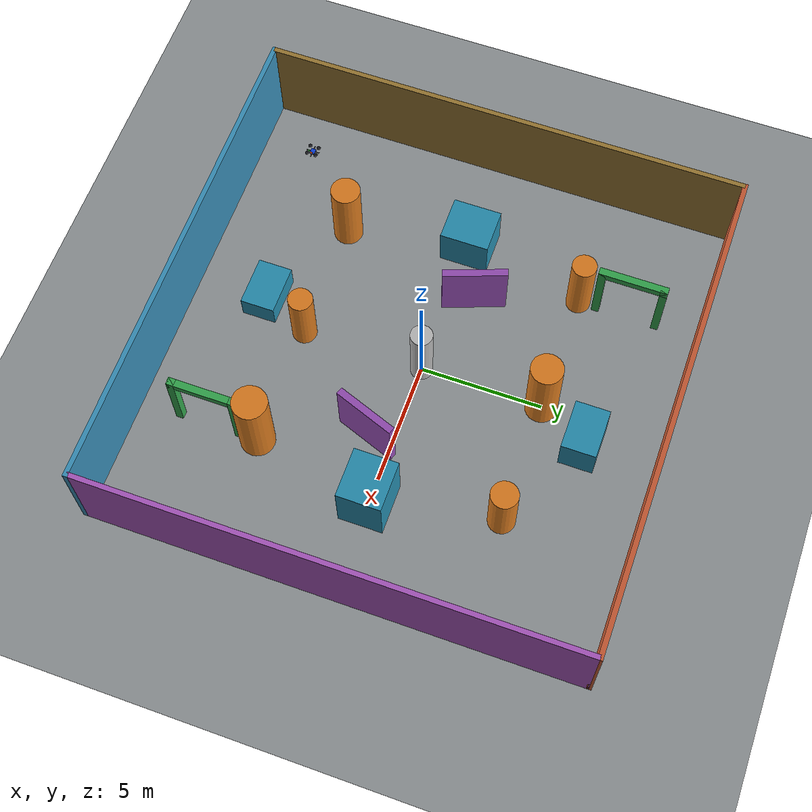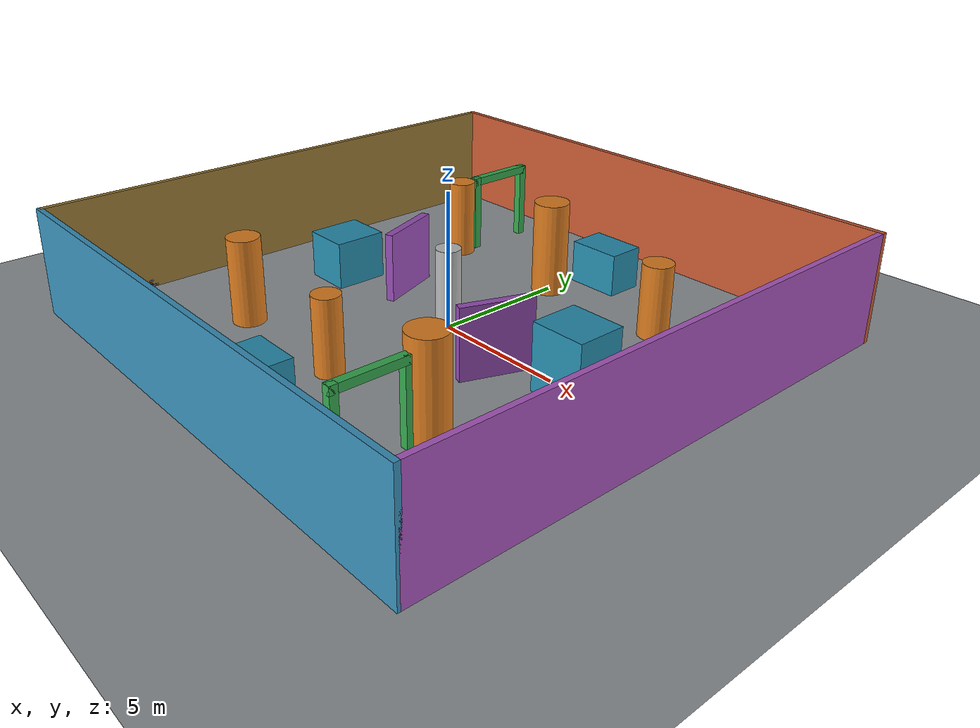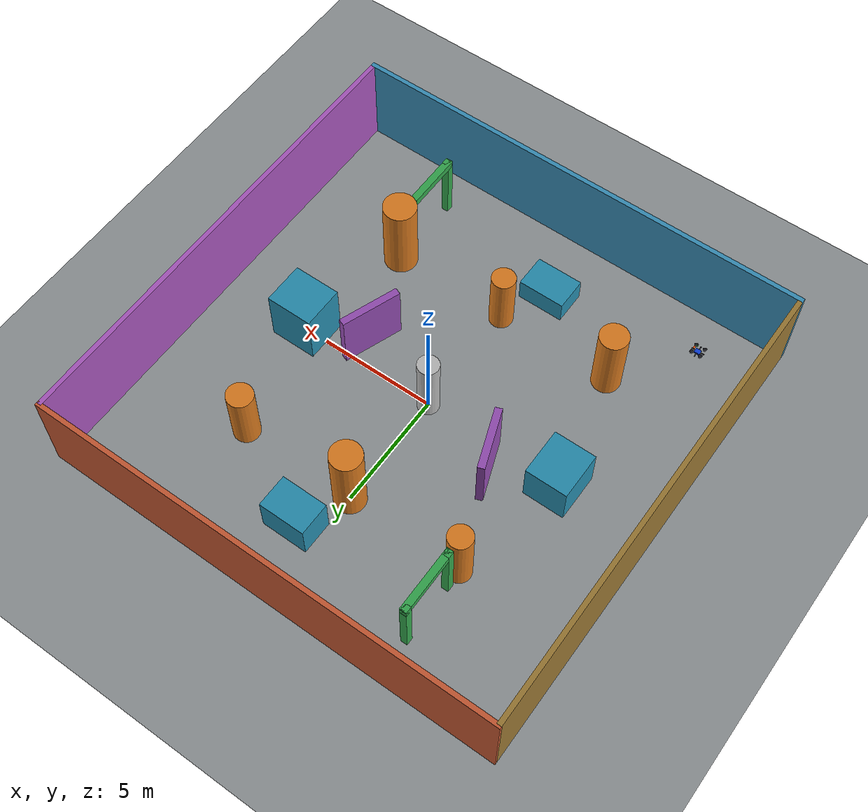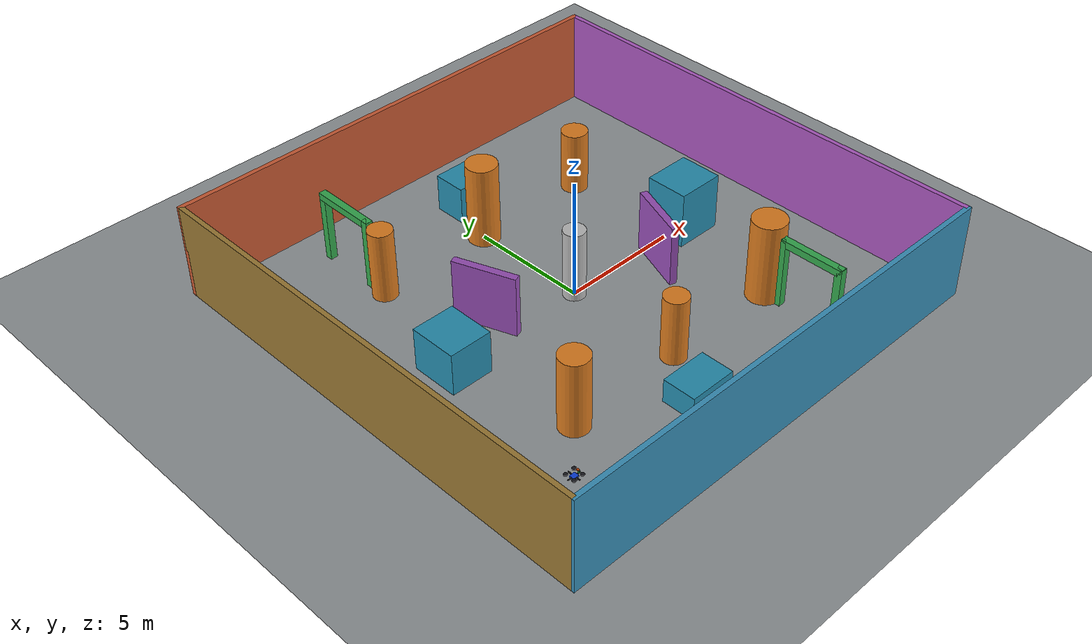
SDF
<?xml version='1.0' encoding='utf-8'?>
<sdf version="1.9">
  <world name="uav_ego_expanded">
    <physics name="fast_step" type="ignored">
      <max_step_size>0.002</max_step_size>
      <real_time_factor>1.0</real_time_factor>
    </physics>
    <plugin filename="gz-sim-physics-system" name="gz::sim::systems::Physics" />
    <plugin filename="gz-sim-user-commands-system" name="gz::sim::systems::UserCommands" />
    <plugin filename="gz-sim-scene-broadcaster-system" name="gz::sim::systems::SceneBroadcaster" />
    <plugin filename="gz-sim-sensors-system" name="gz::sim::systems::Sensors">
      <render_engine>ogre2</render_engine>
    </plugin>
    <plugin filename="gz-sim-imu-system" name="gz::sim::systems::Imu" />
    <scene>
      <ambient>0.45 0.45 0.45 1</ambient>
      <background>0.70 0.75 0.80 1</background>
      <shadows>true</shadows>
    </scene>
    <light type="directional" name="sun">
      <pose>0 0 8 0 0 0</pose>
      <cast_shadows>true</cast_shadows>
      <diffuse>0.9 0.9 0.85 1</diffuse>
      <specular>0.2 0.2 0.2 1</specular>
      <direction>-0.4 0.3 -0.9</direction>
    </light>
    <model name="ground_plane">
      <static>true</static>
      <link name="link">
        <collision name="collision">
          <geometry>
            <plane>
              <normal>0 0 1</normal>
              <size>24 24</size>
            </plane>
          </geometry>
          <surface>
            <friction>
              <ode>
                <mu>20</mu>
                <mu2>20</mu2>
              </ode>
            </friction>
          </surface>
        </collision>
        <visual name="visual">
          <geometry>
            <plane>
              <normal>0 0 1</normal>
              <size>24 24</size>
            </plane>
          </geometry>
          <material>
            <ambient>0.55 0.57 0.58 1</ambient>
            <diffuse>0.55 0.57 0.58 1</diffuse>
          </material>
        </visual>
      </link>
    </model>
    <model name="frame_front">
      <static>true</static>
      <pose>0 10 2 0 0 0</pose>
      <link name="link">
        <collision name="collision">
          <geometry>
            <box>
              <size>20.2 0.2 4</size>
            </box>
          </geometry>
        </collision>
        <visual name="visual">
          <geometry>
            <box>
              <size>20.2 0.2 4</size>
            </box>
          </geometry>
          <material>
            <ambient>0.58 0.24 0.18 1</ambient>
            <diffuse>0.78 0.35 0.20 1</diffuse>
          </material>
        </visual>
      </link>
    </model>
    <model name="frame_back">
      <static>true</static>
      <pose>0 -10 2 0 0 0</pose>
      <link name="link">
        <collision name="collision">
          <geometry>
            <box>
              <size>20.2 0.2 4</size>
            </box>
          </geometry>
        </collision>
        <visual name="visual">
          <geometry>
            <box>
              <size>20.2 0.2 4</size>
            </box>
          </geometry>
          <material>
            <ambient>0.22 0.42 0.55 1</ambient>
            <diffuse>0.22 0.56 0.72 1</diffuse>
          </material>
        </visual>
      </link>
    </model>
    <model name="frame_left">
      <static>true</static>
      <pose>-10 0 2 0 0 0</pose>
      <link name="link">
        <collision name="collision">
          <geometry>
            <box>
              <size>0.2 20 4</size>
            </box>
          </geometry>
        </collision>
        <visual name="visual">
          <geometry>
            <box>
              <size>0.2 20 4</size>
            </box>
          </geometry>
          <material>
            <ambient>0.45 0.36 0.16 1</ambient>
            <diffuse>0.60 0.47 0.20 1</diffuse>
          </material>
        </visual>
      </link>
    </model>
    <model name="frame_right">
      <static>true</static>
      <pose>10 0 2 0 0 0</pose>
      <link name="link">
        <collision name="collision">
          <geometry>
            <box>
              <size>0.2 20 4</size>
            </box>
          </geometry>
        </collision>
        <visual name="visual">
          <geometry>
            <box>
              <size>0.2 20 4</size>
            </box>
          </geometry>
          <material>
            <ambient>0.48 0.28 0.52 1</ambient>
            <diffuse>0.66 0.34 0.74 1</diffuse>
          </material>
        </visual>
      </link>
    </model>
    <include>
      <uri>model://uav_quad_mid360</uri>
      <name>uav_quad</name>
      <pose>-7.5 -7.5 1.2 0 0 0</pose>
    </include>
    <gravity>0 0 0</gravity>
    <model name="central_column">
      <static>true</static>
      <pose>0 0 1.5 0 0 0</pose>
      <link name="link">
        <collision name="collision">
          <geometry>
            <cylinder>
              <radius>0.45</radius>
              <length>3.0</length>
            </cylinder>
          </geometry>
        </collision>
        <visual name="visual">
          <geometry>
            <cylinder>
              <radius>0.45</radius>
              <length>3.0</length>
            </cylinder>
          </geometry>
        </visual>
      </link>
    </model>
    <model name="column_1">
      <static>true</static>
      <pose>-5 -5 1.6 0 0 0</pose>
      <link name="link">
        <collision name="collision">
          <geometry>
            <cylinder>
              <radius>0.6</radius>
              <length>3.2</length>
            </cylinder>
          </geometry>
        </collision>
        <visual name="visual">
          <geometry>
            <cylinder>
              <radius>0.6</radius>
              <length>3.2</length>
            </cylinder>
          </geometry>
          <material>
            <ambient>0.85 0.48 0.12 1</ambient>
            <diffuse>0.85 0.48 0.12 1</diffuse>
          </material>
        </visual>
      </link>
    </model>
    <model name="column_2">
      <static>true</static>
      <pose>0 -5 1.4 0 0 0</pose>
      <link name="link">
        <collision name="collision">
          <geometry>
            <cylinder>
              <radius>0.5</radius>
              <length>2.8</length>
            </cylinder>
          </geometry>
        </collision>
        <visual name="visual">
          <geometry>
            <cylinder>
              <radius>0.5</radius>
              <length>2.8</length>
            </cylinder>
          </geometry>
          <material>
            <ambient>0.85 0.48 0.12 1</ambient>
            <diffuse>0.85 0.48 0.12 1</diffuse>
          </material>
        </visual>
      </link>
    </model>
    <model name="column_3">
      <static>true</static>
      <pose>5 -5 1.75 0 0 0</pose>
      <link name="link">
        <collision name="collision">
          <geometry>
            <cylinder>
              <radius>0.7</radius>
              <length>3.5</length>
            </cylinder>
          </geometry>
        </collision>
        <visual name="visual">
          <geometry>
            <cylinder>
              <radius>0.7</radius>
              <length>3.5</length>
            </cylinder>
          </geometry>
          <material>
            <ambient>0.85 0.48 0.12 1</ambient>
            <diffuse>0.85 0.48 0.12 1</diffuse>
          </material>
        </visual>
      </link>
    </model>
    <model name="column_4">
      <static>true</static>
      <pose>-5 5 1.5 0 0 0</pose>
      <link name="link">
        <collision name="collision">
          <geometry>
            <cylinder>
              <radius>0.5</radius>
              <length>3.0</length>
            </cylinder>
          </geometry>
        </collision>
        <visual name="visual">
          <geometry>
            <cylinder>
              <radius>0.5</radius>
              <length>3.0</length>
            </cylinder>
          </geometry>
          <material>
            <ambient>0.85 0.48 0.12 1</ambient>
            <diffuse>0.85 0.48 0.12 1</diffuse>
          </material>
        </visual>
      </link>
    </model>
    <model name="column_5">
      <static>true</static>
      <pose>0 5 1.75 0 0 0</pose>
      <link name="link">
        <collision name="collision">
          <geometry>
            <cylinder>
              <radius>0.65</radius>
              <length>3.5</length>
            </cylinder>
          </geometry>
        </collision>
        <visual name="visual">
          <geometry>
            <cylinder>
              <radius>0.65</radius>
              <length>3.5</length>
            </cylinder>
          </geometry>
          <material>
            <ambient>0.85 0.48 0.12 1</ambient>
            <diffuse>0.85 0.48 0.12 1</diffuse>
          </material>
        </visual>
      </link>
    </model>
    <model name="column_6">
      <static>true</static>
      <pose>5 5 1.35 0 0 0</pose>
      <link name="link">
        <collision name="collision">
          <geometry>
            <cylinder>
              <radius>0.55</radius>
              <length>2.7</length>
            </cylinder>
          </geometry>
        </collision>
        <visual name="visual">
          <geometry>
            <cylinder>
              <radius>0.55</radius>
              <length>2.7</length>
            </cylinder>
          </geometry>
          <material>
            <ambient>0.85 0.48 0.12 1</ambient>
            <diffuse>0.85 0.48 0.12 1</diffuse>
          </material>
        </visual>
      </link>
    </model>
    <model name="crate_1">
      <static>true</static>
      <pose>-6 0 0.9 0 0 0</pose>
      <link name="link">
        <collision name="collision">
          <geometry>
            <box>
              <size>1.8 2 1.8</size>
            </box>
          </geometry>
        </collision>
        <visual name="visual">
          <geometry>
            <box>
              <size>1.8 2 1.8</size>
            </box>
          </geometry>
          <material>
            <ambient>0.15 0.55 0.68 1</ambient>
            <diffuse>0.15 0.55 0.68 1</diffuse>
          </material>
        </visual>
      </link>
    </model>
    <model name="crate_2">
      <static>true</static>
      <pose>6 0 1.2 0 0 0</pose>
      <link name="link">
        <collision name="collision">
          <geometry>
            <box>
              <size>2 1.8 2.4</size>
            </box>
          </geometry>
        </collision>
        <visual name="visual">
          <geometry>
            <box>
              <size>2 1.8 2.4</size>
            </box>
          </geometry>
          <material>
            <ambient>0.15 0.55 0.68 1</ambient>
            <diffuse>0.15 0.55 0.68 1</diffuse>
          </material>
        </visual>
      </link>
    </model>
    <model name="crate_3">
      <static>true</static>
      <pose>-1 -7 0.5 0 0 0</pose>
      <link name="link">
        <collision name="collision">
          <geometry>
            <box>
              <size>2 1.4 1</size>
            </box>
          </geometry>
        </collision>
        <visual name="visual">
          <geometry>
            <box>
              <size>2 1.4 1</size>
            </box>
          </geometry>
          <material>
            <ambient>0.15 0.55 0.68 1</ambient>
            <diffuse>0.15 0.55 0.68 1</diffuse>
          </material>
        </visual>
      </link>
    </model>
    <model name="crate_4">
      <static>true</static>
      <pose>1 7 0.8 0 0 0</pose>
      <link name="link">
        <collision name="collision">
          <geometry>
            <box>
              <size>2 1.4 1.6</size>
            </box>
          </geometry>
        </collision>
        <visual name="visual">
          <geometry>
            <box>
              <size>2 1.4 1.6</size>
            </box>
          </geometry>
          <material>
            <ambient>0.15 0.55 0.68 1</ambient>
            <diffuse>0.15 0.55 0.68 1</diffuse>
          </material>
        </visual>
      </link>
    </model>
    <model name="partition_1">
      <static>true</static>
      <pose>-3.5 1 1.3 0 0 0.35</pose>
      <link name="link">
        <collision name="collision">
          <geometry>
            <box>
              <size>0.3 2.6 2.6</size>
            </box>
          </geometry>
        </collision>
        <visual name="visual">
          <geometry>
            <box>
              <size>0.3 2.6 2.6</size>
            </box>
          </geometry>
          <material>
            <ambient>0.58 0.3 0.7 1</ambient>
            <diffuse>0.58 0.3 0.7 1</diffuse>
          </material>
        </visual>
      </link>
    </model>
    <model name="partition_2">
      <static>true</static>
      <pose>3.5 -1 1.3 0 0 -0.35</pose>
      <link name="link">
        <collision name="collision">
          <geometry>
            <box>
              <size>0.3 2.6 2.6</size>
            </box>
          </geometry>
        </collision>
        <visual name="visual">
          <geometry>
            <box>
              <size>0.3 2.6 2.6</size>
            </box>
          </geometry>
          <material>
            <ambient>0.58 0.3 0.7 1</ambient>
            <diffuse>0.58 0.3 0.7 1</diffuse>
          </material>
        </visual>
      </link>
    </model>
    <model name="gate_1_left">
      <static>true</static>
      <pose>-5 5.75 1.5 0 0 0</pose>
      <link name="link">
        <collision name="collision">
          <geometry>
            <box>
              <size>0.3 0.3 3</size>
            </box>
          </geometry>
        </collision>
        <visual name="visual">
          <geometry>
            <box>
              <size>0.3 0.3 3</size>
            </box>
          </geometry>
          <material>
            <ambient>0.2 0.65 0.3 1</ambient>
            <diffuse>0.2 0.65 0.3 1</diffuse>
          </material>
        </visual>
      </link>
    </model>
    <model name="gate_1_right">
      <static>true</static>
      <pose>-5 8.25 1.5 0 0 0</pose>
      <link name="link">
        <collision name="collision">
          <geometry>
            <box>
              <size>0.3 0.3 3</size>
            </box>
          </geometry>
        </collision>
        <visual name="visual">
          <geometry>
            <box>
              <size>0.3 0.3 3</size>
            </box>
          </geometry>
          <material>
            <ambient>0.2 0.65 0.3 1</ambient>
            <diffuse>0.2 0.65 0.3 1</diffuse>
          </material>
        </visual>
      </link>
    </model>
    <model name="gate_1_top">
      <static>true</static>
      <pose>-5 7 2.85 0 0 0</pose>
      <link name="link">
        <collision name="collision">
          <geometry>
            <box>
              <size>0.3 2.8 0.3</size>
            </box>
          </geometry>
        </collision>
        <visual name="visual">
          <geometry>
            <box>
              <size>0.3 2.8 0.3</size>
            </box>
          </geometry>
          <material>
            <ambient>0.2 0.65 0.3 1</ambient>
            <diffuse>0.2 0.65 0.3 1</diffuse>
          </material>
        </visual>
      </link>
    </model>
    <model name="gate_2_left">
      <static>true</static>
      <pose>5 -8.25 1.5 0 0 0</pose>
      <link name="link">
        <collision name="collision">
          <geometry>
            <box>
              <size>0.3 0.3 3</size>
            </box>
          </geometry>
        </collision>
        <visual name="visual">
          <geometry>
            <box>
              <size>0.3 0.3 3</size>
            </box>
          </geometry>
          <material>
            <ambient>0.2 0.65 0.3 1</ambient>
            <diffuse>0.2 0.65 0.3 1</diffuse>
          </material>
        </visual>
      </link>
    </model>
    <model name="gate_2_right">
      <static>true</static>
      <pose>5 -5.75 1.5 0 0 0</pose>
      <link name="link">
        <collision name="collision">
          <geometry>
            <box>
              <size>0.3 0.3 3</size>
            </box>
          </geometry>
        </collision>
        <visual name="visual">
          <geometry>
            <box>
              <size>0.3 0.3 3</size>
            </box>
          </geometry>
          <material>
            <ambient>0.2 0.65 0.3 1</ambient>
            <diffuse>0.2 0.65 0.3 1</diffuse>
          </material>
        </visual>
      </link>
    </model>
    <model name="gate_2_top">
      <static>true</static>
      <pose>5 -7 2.85 0 0 0</pose>
      <link name="link">
        <collision name="collision">
          <geometry>
            <box>
              <size>0.3 2.8 0.3</size>
            </box>
          </geometry>
        </collision>
        <visual name="visual">
          <geometry>
            <box>
              <size>0.3 2.8 0.3</size>
            </box>
          </geometry>
          <material>
            <ambient>0.2 0.65 0.3 1</ambient>
            <diffuse>0.2 0.65 0.3 1</diffuse>
          </material>
        </visual>
      </link>
    </model>
  </world>
</sdf>

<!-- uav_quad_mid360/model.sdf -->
<sdf version="1.9">
  <model name="uav_quad_mid360" xmlns:gz="http://gazebosim.org/schema">
    <link name="base_link">
      <inertial>
        <mass>1.5</mass>
        <inertia>
          <ixx>0.035</ixx>
          <iyy>0.035</iyy>
          <izz>0.06</izz>
        </inertia>
      </inertial>
      <collision name="collision">
        <geometry><box><size>0.55 0.55 0.10</size></box></geometry>
      </collision>
      <visual name="body_fuselage">
        <geometry><box><size>0.24 0.20 0.08</size></box></geometry>
        <material>
          <ambient>0.04 0.18 0.55 1</ambient>
          <diffuse>0.05 0.25 0.85 1</diffuse>
        </material>
      </visual>
      <visual name="arm_x">
        <pose>0 0 0.02 0 0 0</pose>
        <geometry><box><size>0.55 0.04 0.02</size></box></geometry>
        <material>
          <ambient>0.10 0.10 0.12 1</ambient>
          <diffuse>0.16 0.16 0.18 1</diffuse>
        </material>
      </visual>
      <visual name="arm_y">
        <pose>0 0 0.02 0 0 1.57079632679</pose>
        <geometry><box><size>0.55 0.04 0.02</size></box></geometry>
        <material>
          <ambient>0.10 0.10 0.12 1</ambient>
          <diffuse>0.16 0.16 0.18 1</diffuse>
        </material>
      </visual>
      <visual name="rotor_front_left">
        <pose>0.19 0.19 0.09 0 0 0</pose>
        <geometry><cylinder><radius>0.08</radius><length>0.02</length></cylinder></geometry>
        <material><ambient>0.05 0.05 0.06 1</ambient><diffuse>0.10 0.10 0.12 1</diffuse></material>
      </visual>
      <visual name="rotor_front_right">
        <pose>0.19 -0.19 0.09 0 0 0</pose>
        <geometry><cylinder><radius>0.08</radius><length>0.02</length></cylinder></geometry>
        <material><ambient>0.05 0.05 0.06 1</ambient><diffuse>0.10 0.10 0.12 1</diffuse></material>
      </visual>
      <visual name="rotor_rear_left">
        <pose>-0.19 0.19 0.09 0 0 0</pose>
        <geometry><cylinder><radius>0.08</radius><length>0.02</length></cylinder></geometry>
        <material><ambient>0.05 0.05 0.06 1</ambient><diffuse>0.10 0.10 0.12 1</diffuse></material>
      </visual>
      <visual name="rotor_rear_right">
        <pose>-0.19 -0.19 0.09 0 0 0</pose>
        <geometry><cylinder><radius>0.08</radius><length>0.02</length></cylinder></geometry>
        <material><ambient>0.05 0.05 0.06 1</ambient><diffuse>0.10 0.10 0.12 1</diffuse></material>
      </visual>
    </link>

    <!-- Gazebo cameras look along local +X. Positive pitch rotates +X toward
         the ground, so this forward-looking OAK-D mount has a 5-degree
         downward tilt relative to the UAV body. -->
    <link name="oakd_camera_link">
      <pose relative_to="base_link">0.18 0 0.16 0 0.08726646260 0</pose>
      <inertial>
        <mass>0.1</mass>
        <inertia>
          <ixx>0.0002</ixx>
          <iyy>0.0002</iyy>
          <izz>0.0002</izz>
        </inertia>
      </inertial>
      <visual name="camera_body">
        <geometry><box><size>0.07 0.10 0.035</size></box></geometry>
        <material>
          <ambient>0.55 0.15 0.01 1</ambient>
          <diffuse>0.95 0.32 0.03 1</diffuse>
        </material>
      </visual>
      <visual name="left_lens">
        <pose>0.038 0.028 0 0 0 0</pose>
        <geometry><box><size>0.008 0.022 0.022</size></box></geometry>
        <material>
          <ambient>0.01 0.01 0.015 1</ambient>
          <diffuse>0.01 0.01 0.015 1</diffuse>
        </material>
      </visual>
      <visual name="right_lens">
        <pose>0.038 -0.028 0 0 0 0</pose>
        <geometry><box><size>0.008 0.022 0.022</size></box></geometry>
        <material>
          <ambient>0.01 0.01 0.015 1</ambient>
          <diffuse>0.01 0.01 0.015 1</diffuse>
        </material>
      </visual>
      <sensor name="oakd_imu" type="imu">
        <always_on>true</always_on>
        <update_rate>200</update_rate>
        <topic>/oakd/imu/raw</topic>
        <gz_frame_id>oakd_imu_link</gz_frame_id>
      </sensor>
      <sensor name="oakd_rgbd" type="rgbd_camera">
        <always_on>true</always_on>
        <update_rate>15</update_rate>
        <topic>rgbd_camera</topic>
        <camera>
          <horizontal_fov>1.21</horizontal_fov>
          <image>
            <width>640</width>
            <height>400</height>
          </image>
          <clip>
            <near>0.15</near>
            <far>8.0</far>
          </clip>
          <optical_frame_id>oakd_camera_optical_frame</optical_frame_id>
        </camera>
      </sensor>
    </link>
    <joint name="oakd_fixed_joint" type="fixed">
      <parent>base_link</parent>
      <child>oakd_camera_link</child>
    </joint>

    <!-- MID360 sensor mount. Keep this pose in sync with the
         base_link -> mid360_link static transform published by
         gazebo_harmonic_nav.launch.py. -->
    <link name="mid360_link">
      <pose relative_to="base_link">0.113137085 -0.113137085 0.18 0.7853981634 0 0.5235987756</pose>
      <inertial>
        <mass>0.03</mass>
        <inertia>
          <ixx>0.00001</ixx>
          <iyy>0.00001</iyy>
          <izz>0.00001</izz>
        </inertia>
      </inertial>
      <visual name="mid360_body">
        <geometry><cylinder><radius>0.035</radius><length>0.06</length></cylinder></geometry>
        <material>
          <ambient>0.10 0.35 0.10 1</ambient>
          <diffuse>0.15 0.55 0.20 1</diffuse>
        </material>
      </visual>
      <sensor name="mid360_lidar" type="gpu_lidar">
        <always_on>true</always_on>
        <update_rate>20</update_rate>
        <topic>/mid360</topic>
        <lidar>
          <scan>
            <horizontal>
              <samples>1875</samples>
              <resolution>1</resolution>
              <min_angle>-3.14159265359</min_angle>
              <max_angle>3.14159265359</max_angle>
            </horizontal>
            <vertical>
              <samples>32</samples>
              <resolution>1</resolution>
              <min_angle>-0.12217304764</min_angle>
              <max_angle>0.90757121104</max_angle>
            </vertical>
          </scan>
          <range>
            <min>0.1</min>
            <max>40.0</max>
            <resolution>0.02</resolution>
          </range>
        </lidar>
        <visualize>true</visualize>
      </sensor>
      <sensor name="mid360_imu" type="imu">
        <always_on>true</always_on>
        <update_rate>200</update_rate>
        <topic>/mid360/imu</topic>
        <gz_frame_id>mid360_link</gz_frame_id>
      </sensor>
    </link>
    <joint name="mid360_fixed_joint" type="fixed">
      <parent>base_link</parent>
      <child>mid360_link</child>
    </joint>

    <plugin filename="gz-sim-velocity-control-system" name="gz::sim::systems::VelocityControl">
      <topic>/cmd_vel</topic>
      <link_name>base_link</link_name>
      <initial_linear>0 0 0</initial_linear>
      <initial_angular>0 0 0</initial_angular>
    </plugin>
    <plugin filename="gz-sim-odometry-publisher-system" name="gz::sim::systems::OdometryPublisher">
      <odom_frame>odom</odom_frame>
      <robot_base_frame>base_link</robot_base_frame>
      <!-- 3D pose is required so nvblox receives the full UAV/camera pose. -->
      <dimensions>3</dimensions>
      <odom_topic>/visual_slam/tracking/odometry</odom_topic>
      <tf_topic>/tf</tf_topic>
      <odom_publish_frequency>50</odom_publish_frequency>
    </plugin>
  </model>
</sdf>
